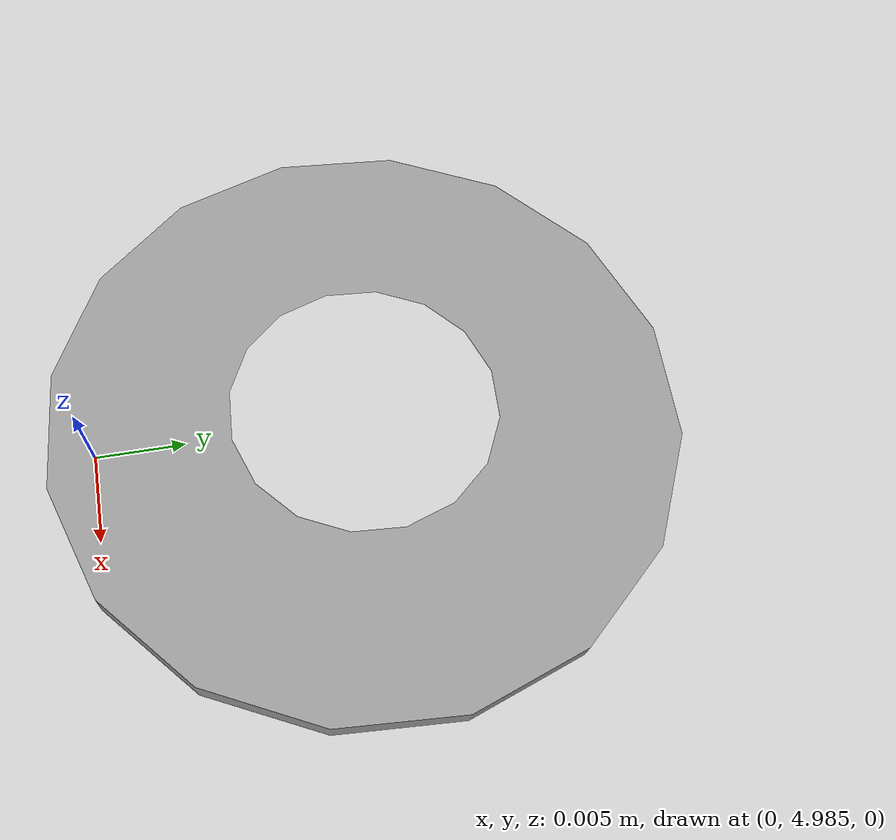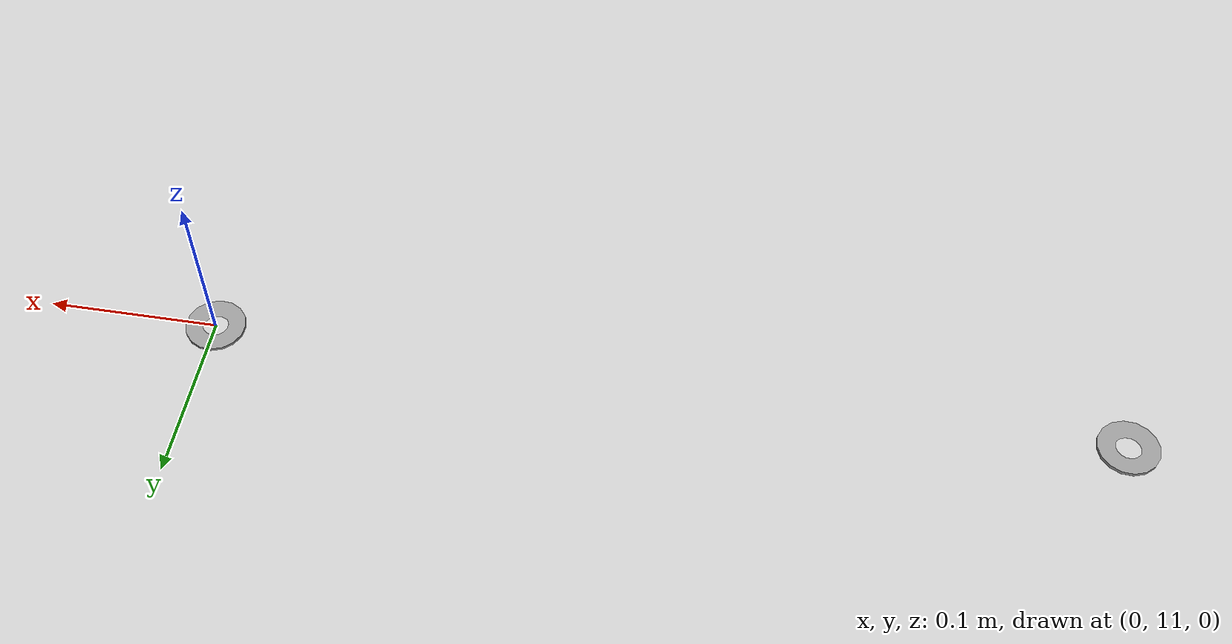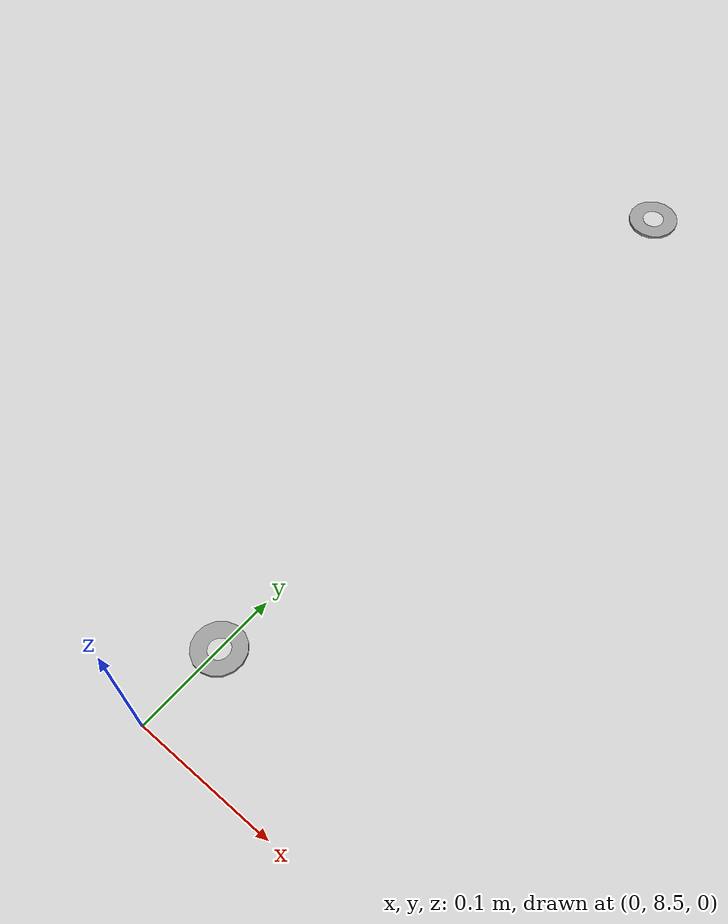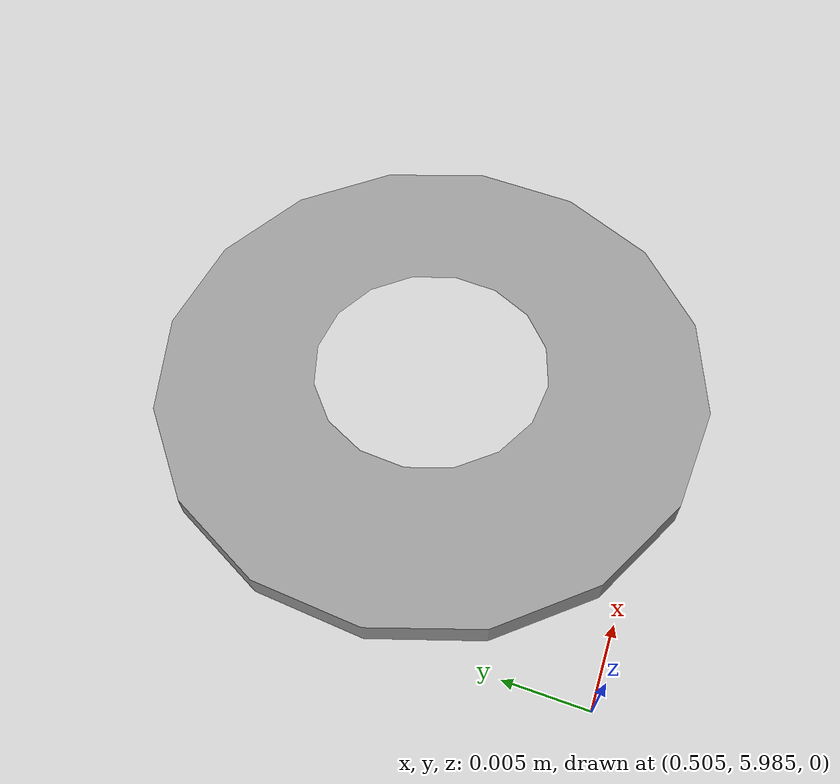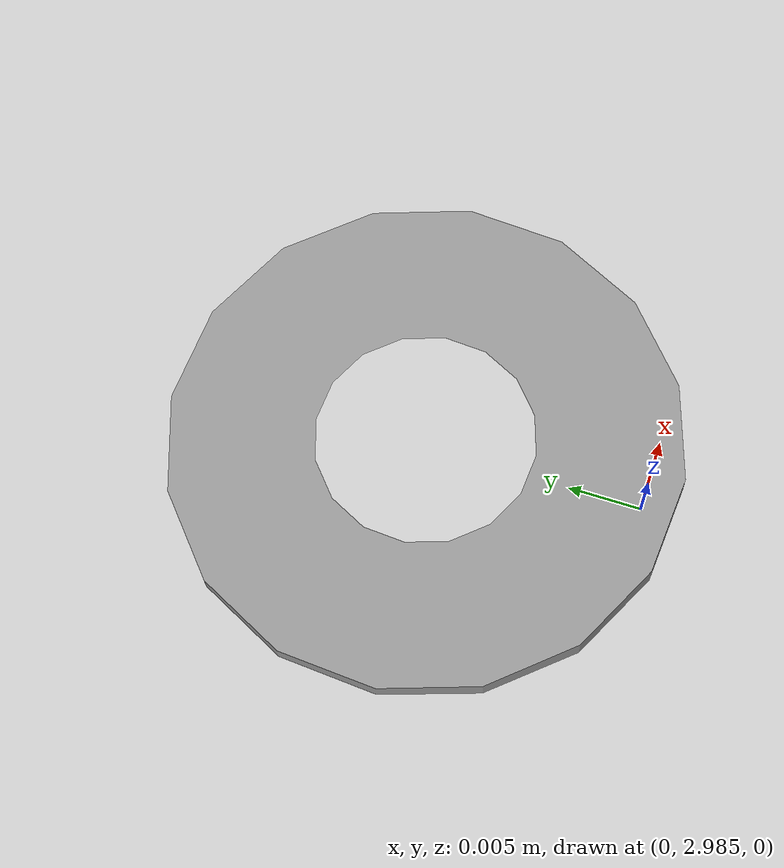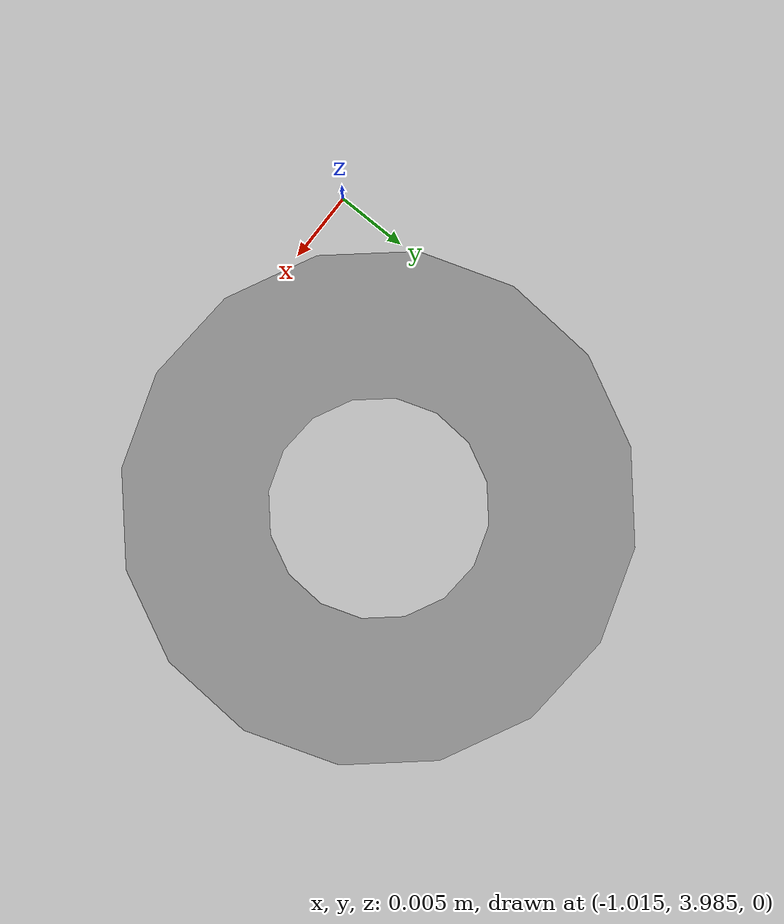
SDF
<sdf version="1.6">
 <world name="default">
  <spherical_coordinates>
   <latitude_deg>46.4143</latitude_deg>
   <longitude_deg>6.92808</longitude_deg>
   <surface_model>EARTH_WGS84</surface_model>
   <elevation>0</elevation>
   <heading_deg>0</heading_deg>
  </spherical_coordinates>
  <physics name="default_physics" default="0" type="ode">
   <real_time_update_rate>1000</real_time_update_rate>
   <max_step_size>0.001</max_step_size>
   <real_time_factor>1</real_time_factor>
   <max_contacts>20</max_contacts>
   <ode>
    <solver>
     <type>world</type>
     <min_step_size>0.0001</min_step_size>
     <iters>50</iters>
     <precon_iters>0</precon_iters>
     <sor>1.4</sor>
     <use_dynamic_moi_rescaling>1</use_dynamic_moi_rescaling>
    </solver>
    <constraints>
     <cfm>0</cfm>
     <erp>0.2</erp>
     <contact_max_correcting_vel>100</contact_max_correcting_vel>
     <contact_surface_layer>0.001</contact_surface_layer>
    </constraints>
   </ode>
  </physics>
  <atmosphere type="adiabatic">
   <temperature>298.15</temperature>
   <pressure>101325</pressure>
   <temperature_gradient>-0.0065</temperature_gradient>
  </atmosphere>
  <plugin name="fwman" filename="libsphinx_fwman.so">
   <spawn_point name="default"><pose>0 0 0.2 0 0 0</pose></spawn_point>
  </plugin>
  <model name="ground_plane">
   <static>1</static>
   <link name="link">
    <collision name="collision">
     <geometry><plane><normal>0 0 1</normal><size>100 100</size></plane></geometry>
     <surface>
      <contact><collide_bitmask>65535</collide_bitmask></contact>
      <friction><ode><mu>100</mu><mu2>50</mu2></ode></friction>
     </surface>
    </collision>
    <visual name="visual">
     <cast_shadows>0</cast_shadows>
     <geometry><plane><normal>0 0 1</normal><size>100 100</size></plane></geometry>
     <material>
      <script><uri>file://media/materials/scripts/gazebo.material</uri><name>Gazebo/Grey</name></script>
     </material>
    </visual>
   </link>
  </model>
  <model name="washer_1">
   <link name="link">
    <pose>0 0 0.001 0 -0 0</pose>
    <inertial>
     <mass>0.0122</mass>
     <inertia>
      <ixx>1.08758e-06</ixx>
      <ixy>0</ixy>
      <ixz>0</ixz>
      <iyy>1.08758e-06</iyy>
      <iyz>0</iyz>
      <izz>2.16703e-06</izz>
     </inertia>
    </inertial>
    <collision name="collision">
     <geometry><mesh><uri>model://washer/meshes/washer.dae</uri><scale>1 1 1</scale></mesh></geometry>
     <surface>
      <contact>
       <poissons_ratio>0.305</poissons_ratio>
       <elastic_modulus>2e+11</elastic_modulus>
       <ode><kp>100000</kp><kd>100</kd><max_vel>100</max_vel><min_depth>0.001</min_depth></ode>
      </contact>
      <friction>
       <torsional>
        <coefficient>1</coefficient>
        <use_patch_radius>0</use_patch_radius>
        <surface_radius>0.01</surface_radius>
       </torsional>
      </friction>
     </surface>
    </collision>
    <visual name="visual">
     <geometry><mesh><uri>model://washer/meshes/washer.dae</uri><scale>1 1 1</scale></mesh></geometry>
     <material>
      <script><uri>file://media/materials/scripts/gazebo.material</uri><name>Gazebo/Grey</name></script>
     </material>
    </visual>
   </link>
   <pose>0 1.50003 -0.000579 -0.021022 -0.002426 -0.000304</pose>
  </model>
  <model name="washer_2">
   <link name="link">
    <pose>0 0 0.001 0 -0 0</pose>
    <inertial>
     <mass>0.0122</mass>
     <inertia>
      <ixx>1.08758e-06</ixx>
      <ixy>0</ixy>
      <ixz>0</ixz>
      <iyy>1.08758e-06</iyy>
      <iyz>0</iyz>
      <izz>2.16703e-06</izz>
     </inertia>
    </inertial>
    <collision name="collision">
     <geometry><mesh><uri>model://washer/meshes/washer.dae</uri><scale>1 1 1</scale></mesh></geometry>
     <surface>
      <contact>
       <poissons_ratio>0.305</poissons_ratio>
       <elastic_modulus>2e+11</elastic_modulus>
       <ode><kp>100000</kp><kd>100</kd><max_vel>100</max_vel><min_depth>0.001</min_depth></ode>
      </contact>
      <friction>
       <torsional>
        <coefficient>1</coefficient>
        <use_patch_radius>0</use_patch_radius>
        <surface_radius>0.01</surface_radius>
       </torsional>
      </friction>
     </surface>
    </collision>
    <visual name="visual">
     <geometry><mesh><uri>model://washer/meshes/washer.dae</uri><scale>1 1 1</scale></mesh></geometry>
     <material>
      <script><uri>file://media/materials/scripts/gazebo.material</uri><name>Gazebo/Grey</name></script>
     </material>
    </visual>
   </link>
   <pose>0 3.00003 -0.000579 -0.021019 -0.002427 -0.000301</pose>
  </model>
  <model name="washer_3">
   <link name="link">
    <pose>0 0 0.001 0 -0 0</pose>
    <inertial>
     <mass>0.0122</mass>
     <inertia>
      <ixx>1.08758e-06</ixx>
      <ixy>0</ixy>
      <ixz>0</ixz>
      <iyy>1.08758e-06</iyy>
      <iyz>0</iyz>
      <izz>2.16703e-06</izz>
     </inertia>
    </inertial>
    <collision name="collision">
     <geometry><mesh><uri>model://washer/meshes/washer.dae</uri><scale>1 1 1</scale></mesh></geometry>
     <surface>
      <contact>
       <poissons_ratio>0.305</poissons_ratio>
       <elastic_modulus>2e+11</elastic_modulus>
       <ode><kp>100000</kp><kd>100</kd><max_vel>100</max_vel><min_depth>0.001</min_depth></ode>
      </contact>
      <friction>
       <torsional>
        <coefficient>1</coefficient>
        <use_patch_radius>0</use_patch_radius>
        <surface_radius>0.01</surface_radius>
       </torsional>
      </friction>
     </surface>
    </collision>
    <visual name="visual">
     <geometry><mesh><uri>model://washer/meshes/washer.dae</uri><scale>1 1 1</scale></mesh></geometry>
     <material>
      <script><uri>file://media/materials/scripts/gazebo.material</uri><name>Gazebo/Grey</name></script>
     </material>
    </visual>
   </link>
   <pose>0 5.00003 -0.000579 -0.021035 -0.002426 -0.000291</pose>
  </model>
  <model name="washer_4">
   <link name="link">
    <pose>0 0 0.001 0 -0 0</pose>
    <inertial>
     <mass>0.0122</mass>
     <inertia>
      <ixx>1.08758e-06</ixx>
      <ixy>0</ixy>
      <ixz>0</ixz>
      <iyy>1.08758e-06</iyy>
      <iyz>0</iyz>
      <izz>2.16703e-06</izz>
     </inertia>
    </inertial>
    <collision name="collision">
     <geometry><mesh><uri>model://washer/meshes/washer.dae</uri><scale>1 1 1</scale></mesh></geometry>
     <surface>
      <contact>
       <poissons_ratio>0.305</poissons_ratio>
       <elastic_modulus>2e+11</elastic_modulus>
       <ode><kp>100000</kp><kd>100</kd><max_vel>100</max_vel><min_depth>0.001</min_depth></ode>
      </contact>
      <friction>
       <torsional>
        <coefficient>1</coefficient>
        <use_patch_radius>0</use_patch_radius>
        <surface_radius>0.01</surface_radius>
       </torsional>
      </friction>
     </surface>
    </collision>
    <visual name="visual">
     <geometry><mesh><uri>model://washer/meshes/washer.dae</uri><scale>1 1 1</scale></mesh></geometry>
     <material>
      <script><uri>file://media/materials/scripts/gazebo.material</uri><name>Gazebo/Grey</name></script>
     </material>
    </visual>
   </link>
   <pose>0 7.00003 -0.000579 -0.021035 -0.002426 -0.000291</pose>
  </model>
  <model name="washer_5">
   <link name="link">
    <pose>0 0 0.001 0 -0 0</pose>
    <inertial>
     <mass>0.0122</mass>
     <inertia>
      <ixx>1.08758e-06</ixx>
      <ixy>0</ixy>
      <ixz>0</ixz>
      <iyy>1.08758e-06</iyy>
      <iyz>0</iyz>
      <izz>2.16703e-06</izz>
     </inertia>
    </inertial>
    <collision name="collision">
     <geometry><mesh><uri>model://washer/meshes/washer.dae</uri><scale>1 1 1</scale></mesh></geometry>
     <surface>
      <contact>
       <poissons_ratio>0.305</poissons_ratio>
       <elastic_modulus>2e+11</elastic_modulus>
       <ode><kp>100000</kp><kd>100</kd><max_vel>100</max_vel><min_depth>0.001</min_depth></ode>
      </contact>
      <friction>
       <torsional>
        <coefficient>1</coefficient>
        <use_patch_radius>0</use_patch_radius>
        <surface_radius>0.01</surface_radius>
       </torsional>
      </friction>
     </surface>
    </collision>
    <visual name="visual">
     <geometry><mesh><uri>model://washer/meshes/washer.dae</uri><scale>1 1 1</scale></mesh></geometry>
     <material>
      <script><uri>file://media/materials/scripts/gazebo.material</uri><name>Gazebo/Grey</name></script>
     </material>
    </visual>
   </link>
   <pose>0 9.00003 -0.000579 -0.021031 -0.002426 -0.00029</pose>
  </model>
  <model name="washer_6">
   <link name="link">
    <pose>0 0 0.001 0 -0 0</pose>
    <inertial>
     <mass>0.0122</mass>
     <inertia>
      <ixx>1.08758e-06</ixx>
      <ixy>0</ixy>
      <ixz>0</ixz>
      <iyy>1.08758e-06</iyy>
      <iyz>0</iyz>
      <izz>2.16703e-06</izz>
     </inertia>
    </inertial>
    <collision name="collision">
     <geometry><mesh><uri>model://washer/meshes/washer.dae</uri><scale>1 1 1</scale></mesh></geometry>
     <surface>
      <contact>
       <poissons_ratio>0.305</poissons_ratio>
       <elastic_modulus>2e+11</elastic_modulus>
       <ode><kp>100000</kp><kd>100</kd><max_vel>100</max_vel><min_depth>0.001</min_depth></ode>
      </contact>
      <friction>
       <torsional>
        <coefficient>1</coefficient>
        <use_patch_radius>0</use_patch_radius>
        <surface_radius>0.01</surface_radius>
       </torsional>
      </friction>
     </surface>
    </collision>
    <visual name="visual">
     <geometry><mesh><uri>model://washer/meshes/washer.dae</uri><scale>1 1 1</scale></mesh></geometry>
     <material>
      <script><uri>file://media/materials/scripts/gazebo.material</uri><name>Gazebo/Grey</name></script>
     </material>
    </visual>
   </link>
   <pose>0 11 -0.000579 -0.021031 -0.002426 -0.00029</pose>
  </model>
  <model name="washer_7">
   <link name="link">
    <pose>0 0 0.001 0 -0 0</pose>
    <inertial>
     <mass>0.0122</mass>
     <inertia>
      <ixx>1.08758e-06</ixx>
      <ixy>0</ixy>
      <ixz>0</ixz>
      <iyy>1.08758e-06</iyy>
      <iyz>0</iyz>
      <izz>2.16703e-06</izz>
     </inertia>
    </inertial>
    <collision name="collision">
     <geometry><mesh><uri>model://washer/meshes/washer.dae</uri><scale>1 1 1</scale></mesh></geometry>
     <surface>
      <contact>
       <poissons_ratio>0.305</poissons_ratio>
       <elastic_modulus>2e+11</elastic_modulus>
       <ode><kp>100000</kp><kd>100</kd><max_vel>100</max_vel><min_depth>0.001</min_depth></ode>
      </contact>
      <friction>
       <torsional>
        <coefficient>1</coefficient>
        <use_patch_radius>0</use_patch_radius>
        <surface_radius>0.01</surface_radius>
       </torsional>
      </friction>
     </surface>
    </collision>
    <visual name="visual">
     <geometry><mesh><uri>model://washer/meshes/washer.dae</uri><scale>1 1 1</scale></mesh></geometry>
     <material>
      <script><uri>file://media/materials/scripts/gazebo.material</uri><name>Gazebo/Grey</name></script>
     </material>
    </visual>
   </link>
   <pose>0 13 -0.000579 -0.021031 -0.002426 -0.00029</pose>
  </model>
  <model name="washer_8">
   <link name="link">
    <pose>0 0 0.001 0 -0 0</pose>
    <inertial>
     <mass>0.0122</mass>
     <inertia>
      <ixx>1.08758e-06</ixx>
      <ixy>0</ixy>
      <ixz>0</ixz>
      <iyy>1.08758e-06</iyy>
      <iyz>0</iyz>
      <izz>2.16703e-06</izz>
     </inertia>
    </inertial>
    <collision name="collision">
     <geometry><mesh><uri>model://washer/meshes/washer.dae</uri><scale>1 1 1</scale></mesh></geometry>
     <surface>
      <contact>
       <poissons_ratio>0.305</poissons_ratio>
       <elastic_modulus>2e+11</elastic_modulus>
       <ode><kp>100000</kp><kd>100</kd><max_vel>100</max_vel><min_depth>0.001</min_depth></ode>
      </contact>
      <friction>
       <torsional>
        <coefficient>1</coefficient>
        <use_patch_radius>0</use_patch_radius>
        <surface_radius>0.01</surface_radius>
       </torsional>
      </friction>
     </surface>
    </collision>
    <visual name="visual">
     <geometry><mesh><uri>model://washer/meshes/washer.dae</uri><scale>1 1 1</scale></mesh></geometry>
     <material>
      <script><uri>file://media/materials/scripts/gazebo.material</uri><name>Gazebo/Grey</name></script>
     </material>
    </visual>
   </link>
   <pose>0 15 -0.000579 -0.021031 -0.002426 -0.00029</pose>
  </model>
  <model name="washer_9">
   <link name="link">
    <pose>0 0 0.001 0 -0 0</pose>
    <inertial>
     <mass>0.0122</mass>
     <inertia>
      <ixx>1.08758e-06</ixx>
      <ixy>0</ixy>
      <ixz>0</ixz>
      <iyy>1.08758e-06</iyy>
      <iyz>0</iyz>
      <izz>2.16703e-06</izz>
     </inertia>
    </inertial>
    <collision name="collision">
     <geometry><mesh><uri>model://washer/meshes/washer.dae</uri><scale>1 1 1</scale></mesh></geometry>
     <surface>
      <contact>
       <poissons_ratio>0.305</poissons_ratio>
       <elastic_modulus>2e+11</elastic_modulus>
       <ode><kp>100000</kp><kd>100</kd><max_vel>100</max_vel><min_depth>0.001</min_depth></ode>
      </contact>
      <friction>
       <torsional>
        <coefficient>1</coefficient>
        <use_patch_radius>0</use_patch_radius>
        <surface_radius>0.01</surface_radius>
       </torsional>
      </friction>
     </surface>
    </collision>
    <visual name="visual">
     <geometry><mesh><uri>model://washer/meshes/washer.dae</uri><scale>1 1 1</scale></mesh></geometry>
     <material>
      <script><uri>file://media/materials/scripts/gazebo.material</uri><name>Gazebo/Grey</name></script>
     </material>
    </visual>
   </link>
   <pose>0 17 -0.000579 -0.021035 -0.002426 -0.000294</pose>
  </model>
  <model name="washer_10">
   <link name="link">
    <pose>0 0 0.001 0 -0 0</pose>
    <inertial>
     <mass>0.0122</mass>
     <inertia>
      <ixx>1.08758e-06</ixx>
      <ixy>0</ixy>
      <ixz>0</ixz>
      <iyy>1.08758e-06</iyy>
      <iyz>0</iyz>
      <izz>2.16703e-06</izz>
     </inertia>
    </inertial>
    <collision name="collision">
     <geometry><mesh><uri>model://washer/meshes/washer.dae</uri><scale>1 1 1</scale></mesh></geometry>
     <surface>
      <contact>
       <poissons_ratio>0.305</poissons_ratio>
       <elastic_modulus>2e+11</elastic_modulus>
       <ode><kp>100000</kp><kd>100</kd><max_vel>100</max_vel><min_depth>0.001</min_depth></ode>
      </contact>
      <friction>
       <torsional>
        <coefficient>1</coefficient>
        <use_patch_radius>0</use_patch_radius>
        <surface_radius>0.01</surface_radius>
       </torsional>
      </friction>
     </surface>
    </collision>
    <visual name="visual">
     <geometry><mesh><uri>model://washer/meshes/washer.dae</uri><scale>1 1 1</scale></mesh></geometry>
     <material>
      <script><uri>file://media/materials/scripts/gazebo.material</uri><name>Gazebo/Grey</name></script>
     </material>
    </visual>
   </link>
   <pose>0 19 -0.000579 -0.021035 -0.002426 -0.000294</pose>
  </model>
  <model name="washer_11">
   <link name="link">
    <pose>0 0 0.001 0 -0 0</pose>
    <inertial>
     <mass>0.0122</mass>
     <inertia>
      <ixx>1.08758e-06</ixx>
      <ixy>0</ixy>
      <ixz>0</ixz>
      <iyy>1.08758e-06</iyy>
      <iyz>0</iyz>
      <izz>2.16703e-06</izz>
     </inertia>
    </inertial>
    <collision name="collision">
     <geometry><mesh><uri>model://washer/meshes/washer.dae</uri><scale>1 1 1</scale></mesh></geometry>
     <surface>
      <contact>
       <poissons_ratio>0.305</poissons_ratio>
       <elastic_modulus>2e+11</elastic_modulus>
       <ode><kp>100000</kp><kd>100</kd><max_vel>100</max_vel><min_depth>0.001</min_depth></ode>
      </contact>
      <friction>
       <torsional>
        <coefficient>1</coefficient>
        <use_patch_radius>0</use_patch_radius>
        <surface_radius>0.01</surface_radius>
       </torsional>
      </friction>
     </surface>
    </collision>
    <visual name="visual">
     <geometry><mesh><uri>model://washer/meshes/washer.dae</uri><scale>1 1 1</scale></mesh></geometry>
     <material>
      <script><uri>file://media/materials/scripts/gazebo.material</uri><name>Gazebo/Grey</name></script>
     </material>
    </visual>
   </link>
   <pose>0 21 -0.000579 -0.021035 -0.002426 -0.000294</pose>
  </model>
  <scene><ambient>0.4 0.4 0.4 1</ambient><background>0.7 0.7 0.7 1</background><shadows>1</shadows></scene>
  <light name="sun" type="directional">
   <pose>0 0 400 0 -0 0</pose>
   <diffuse>0.8 0.8 0.8 1</diffuse>
   <specular>0.2 0.2 0.2 1</specular>
   <attenuation>
    <range>1000</range>
    <constant>0.9</constant>
    <linear>0.01</linear>
    <quadratic>0.001</quadratic>
   </attenuation>
   <direction>-0.5 0.1 -0.9</direction>
  </light>
  <gravity>0 0 -9.81</gravity>
  <magnetic_field>0 2.1e-05 -4.3e-05</magnetic_field>
  <model name="washer">
   <link name="link">
    <pose>0 0 0.001 0 -0 0</pose>
    <inertial>
     <mass>0.0122</mass>
     <inertia>
      <ixx>1.08758e-06</ixx>
      <ixy>0</ixy>
      <ixz>0</ixz>
      <iyy>1.08758e-06</iyy>
      <iyz>0</iyz>
      <izz>2.16703e-06</izz>
     </inertia>
    </inertial>
    <collision name="collision">
     <geometry><mesh><uri>model://washer/meshes/washer.dae</uri><scale>1 1 1</scale></mesh></geometry>
     <surface>
      <contact>
       <poissons_ratio>0.305</poissons_ratio>
       <elastic_modulus>2e+11</elastic_modulus>
       <ode><kp>100000</kp><kd>100</kd><max_vel>100</max_vel><min_depth>0.001</min_depth></ode>
      </contact>
      <friction>
       <torsional>
        <coefficient>1</coefficient>
        <use_patch_radius>0</use_patch_radius>
        <surface_radius>0.01</surface_radius>
       </torsional>
      </friction>
     </surface>
    </collision>
    <visual name="visual">
     <geometry><mesh><uri>model://washer/meshes/washer.dae</uri><scale>1 1 1</scale></mesh></geometry>
     <material>
      <script><uri>file://media/materials/scripts/gazebo.material</uri><name>Gazebo/Grey</name></script>
     </material>
    </visual>
   </link>
   <pose>-2 1.51851 -0.000515 -0.018702 -0.002203 -0.000311</pose>
  </model>
  <model name="washer_0">
   <link name="link">
    <pose>0 0 0.001 0 -0 0</pose>
    <inertial>
     <mass>0.0122</mass>
     <inertia>
      <ixx>1.08758e-06</ixx>
      <ixy>0</ixy>
      <ixz>0</ixz>
      <iyy>1.08758e-06</iyy>
      <iyz>0</iyz>
      <izz>2.16703e-06</izz>
     </inertia>
    </inertial>
    <collision name="collision">
     <geometry><mesh><uri>model://washer/meshes/washer.dae</uri><scale>1 1 1</scale></mesh></geometry>
     <surface>
      <contact>
       <poissons_ratio>0.305</poissons_ratio>
       <elastic_modulus>2e+11</elastic_modulus>
       <ode><kp>100000</kp><kd>100</kd><max_vel>100</max_vel><min_depth>0.001</min_depth></ode>
      </contact>
      <friction>
       <torsional>
        <coefficient>1</coefficient>
        <use_patch_radius>0</use_patch_radius>
        <surface_radius>0.01</surface_radius>
       </torsional>
      </friction>
     </surface>
    </collision>
    <visual name="visual">
     <geometry><mesh><uri>model://washer/meshes/washer.dae</uri><scale>1 1 1</scale></mesh></geometry>
     <material>
      <script><uri>file://media/materials/scripts/gazebo.material</uri><name>Gazebo/Grey</name></script>
     </material>
    </visual>
   </link>
   <pose>-1.50557 3.00003 -0.00045 -0.016387 -0.001968 -0.000304</pose>
  </model>
  <model name="washer_12">
   <link name="link">
    <pose>0 0 0.001 0 -0 0</pose>
    <inertial>
     <mass>0.0122</mass>
     <inertia>
      <ixx>1.08758e-06</ixx>
      <ixy>0</ixy>
      <ixz>0</ixz>
      <iyy>1.08758e-06</iyy>
      <iyz>0</iyz>
      <izz>2.16703e-06</izz>
     </inertia>
    </inertial>
    <collision name="collision">
     <geometry><mesh><uri>model://washer/meshes/washer.dae</uri><scale>1 1 1</scale></mesh></geometry>
     <surface>
      <contact>
       <poissons_ratio>0.305</poissons_ratio>
       <elastic_modulus>2e+11</elastic_modulus>
       <ode><kp>100000</kp><kd>100</kd><max_vel>100</max_vel><min_depth>0.001</min_depth></ode>
      </contact>
      <friction>
       <torsional>
        <coefficient>1</coefficient>
        <use_patch_radius>0</use_patch_radius>
        <surface_radius>0.01</surface_radius>
       </torsional>
      </friction>
     </surface>
    </collision>
    <visual name="visual">
     <geometry><mesh><uri>model://washer/meshes/washer.dae</uri><scale>1 1 1</scale></mesh></geometry>
     <material>
      <script><uri>file://media/materials/scripts/gazebo.material</uri><name>Gazebo/Grey</name></script>
     </material>
    </visual>
   </link>
   <pose>-1 4.00003 -0.000386 -0.01403 -0.001724 -0.000318</pose>
  </model>
  <model name="washer_13">
   <link name="link">
    <pose>0 0 0.001 0 -0 0</pose>
    <inertial>
     <mass>0.0122</mass>
     <inertia>
      <ixx>1.08758e-06</ixx>
      <ixy>0</ixy>
      <ixz>0</ixz>
      <iyy>1.08758e-06</iyy>
      <iyz>0</iyz>
      <izz>2.16703e-06</izz>
     </inertia>
    </inertial>
    <collision name="collision">
     <geometry><mesh><uri>model://washer/meshes/washer.dae</uri><scale>1 1 1</scale></mesh></geometry>
     <surface>
      <contact>
       <poissons_ratio>0.305</poissons_ratio>
       <elastic_modulus>2e+11</elastic_modulus>
       <ode><kp>100000</kp><kd>100</kd><max_vel>100</max_vel><min_depth>0.001</min_depth></ode>
      </contact>
      <friction>
       <torsional>
        <coefficient>1</coefficient>
        <use_patch_radius>0</use_patch_radius>
        <surface_radius>0.01</surface_radius>
       </torsional>
      </friction>
     </surface>
    </collision>
    <visual name="visual">
     <geometry><mesh><uri>model://washer/meshes/washer.dae</uri><scale>1 1 1</scale></mesh></geometry>
     <material>
      <script><uri>file://media/materials/scripts/gazebo.material</uri><name>Gazebo/Grey</name></script>
     </material>
    </visual>
   </link>
   <pose>0.522013 6.00003 -0.000322 -0.011666 -0.00147 -0.000329</pose>
  </model>
  <model name="washer_14">
   <link name="link">
    <pose>0 0 0.001 0 -0 0</pose>
    <inertial>
     <mass>0.0122</mass>
     <inertia>
      <ixx>1.08758e-06</ixx>
      <ixy>0</ixy>
      <ixz>0</ixz>
      <iyy>1.08758e-06</iyy>
      <iyz>0</iyz>
      <izz>2.16703e-06</izz>
     </inertia>
    </inertial>
    <collision name="collision">
     <geometry><mesh><uri>model://washer/meshes/washer.dae</uri><scale>1 1 1</scale></mesh></geometry>
     <surface>
      <contact>
       <poissons_ratio>0.305</poissons_ratio>
       <elastic_modulus>2e+11</elastic_modulus>
       <ode><kp>100000</kp><kd>100</kd><max_vel>100</max_vel><min_depth>0.001</min_depth></ode>
      </contact>
      <friction>
       <torsional>
        <coefficient>1</coefficient>
        <use_patch_radius>0</use_patch_radius>
        <surface_radius>0.01</surface_radius>
       </torsional>
      </friction>
     </surface>
    </collision>
    <visual name="visual">
     <geometry><mesh><uri>model://washer/meshes/washer.dae</uri><scale>1 1 1</scale></mesh></geometry>
     <material>
      <script><uri>file://media/materials/scripts/gazebo.material</uri><name>Gazebo/Grey</name></script>
     </material>
    </visual>
   </link>
   <pose>1 7.52313 -0.000258 -0.009301 -0.001204 -0.000342</pose>
  </model>
  <model name="washer_15">
   <link name="link">
    <pose>0 0 0.001 0 -0 0</pose>
    <inertial>
     <mass>0.0122</mass>
     <inertia>
      <ixx>1.08758e-06</ixx>
      <ixy>0</ixy>
      <ixz>0</ixz>
      <iyy>1.08758e-06</iyy>
      <iyz>0</iyz>
      <izz>2.16703e-06</izz>
     </inertia>
    </inertial>
    <collision name="collision">
     <geometry><mesh><uri>model://washer/meshes/washer.dae</uri><scale>1 1 1</scale></mesh></geometry>
     <surface>
      <contact>
       <poissons_ratio>0.305</poissons_ratio>
       <elastic_modulus>2e+11</elastic_modulus>
       <ode><kp>100000</kp><kd>100</kd><max_vel>100</max_vel><min_depth>0.001</min_depth></ode>
      </contact>
      <friction>
       <torsional>
        <coefficient>1</coefficient>
        <use_patch_radius>0</use_patch_radius>
        <surface_radius>0.01</surface_radius>
       </torsional>
      </friction>
     </surface>
    </collision>
    <visual name="visual">
     <geometry><mesh><uri>model://washer/meshes/washer.dae</uri><scale>1 1 1</scale></mesh></geometry>
     <material>
      <script><uri>file://media/materials/scripts/gazebo.material</uri><name>Gazebo/Grey</name></script>
     </material>
    </visual>
   </link>
   <pose>0 8.56081 -0.000193 -0.006914 -0.000929 -0.000336</pose>
  </model>
  <model name="washer_16">
   <link name="link">
    <pose>0 0 0.001 0 -0 0</pose>
    <inertial>
     <mass>0.0122</mass>
     <inertia>
      <ixx>1.08758e-06</ixx>
      <ixy>0</ixy>
      <ixz>0</ixz>
      <iyy>1.08758e-06</iyy>
      <iyz>0</iyz>
      <izz>2.16703e-06</izz>
     </inertia>
    </inertial>
    <collision name="collision">
     <geometry><mesh><uri>model://washer/meshes/washer.dae</uri><scale>1 1 1</scale></mesh></geometry>
     <surface>
      <contact>
       <poissons_ratio>0.305</poissons_ratio>
       <elastic_modulus>2e+11</elastic_modulus>
       <ode><kp>100000</kp><kd>100</kd><max_vel>100</max_vel><min_depth>0.001</min_depth></ode>
      </contact>
      <friction>
       <torsional>
        <coefficient>1</coefficient>
        <use_patch_radius>0</use_patch_radius>
        <surface_radius>0.01</surface_radius>
       </torsional>
      </friction>
     </surface>
    </collision>
    <visual name="visual">
     <geometry><mesh><uri>model://washer/meshes/washer.dae</uri><scale>1 1 1</scale></mesh></geometry>
     <material>
      <script><uri>file://media/materials/scripts/gazebo.material</uri><name>Gazebo/Grey</name></script>
     </material>
    </visual>
   </link>
   <pose>-1 9.53335 -0.000129 -0.004559 -0.000633 -0.000297</pose>
  </model>
  <model name="washer_17">
   <link name="link">
    <pose>0 0 0.001 0 -0 0</pose>
    <inertial>
     <mass>0.0122</mass>
     <inertia>
      <ixx>1.08758e-06</ixx>
      <ixy>0</ixy>
      <ixz>0</ixz>
      <iyy>1.08758e-06</iyy>
      <iyz>0</iyz>
      <izz>2.16703e-06</izz>
     </inertia>
    </inertial>
    <collision name="collision">
     <geometry><mesh><uri>model://washer/meshes/washer.dae</uri><scale>1 1 1</scale></mesh></geometry>
     <surface>
      <contact>
       <poissons_ratio>0.305</poissons_ratio>
       <elastic_modulus>2e+11</elastic_modulus>
       <ode><kp>100000</kp><kd>100</kd><max_vel>100</max_vel><min_depth>0.001</min_depth></ode>
      </contact>
      <friction>
       <torsional>
        <coefficient>1</coefficient>
        <use_patch_radius>0</use_patch_radius>
        <surface_radius>0.01</surface_radius>
       </torsional>
      </friction>
     </surface>
    </collision>
    <visual name="visual">
     <geometry><mesh><uri>model://washer/meshes/washer.dae</uri><scale>1 1 1</scale></mesh></geometry>
     <material>
      <script><uri>file://media/materials/scripts/gazebo.material</uri><name>Gazebo/Grey</name></script>
     </material>
    </visual>
   </link>
   <pose>-0.521316 11 -6.5e-05 -0.00228 -0.000314 -0.000141</pose>
  </model>
 </world>
</sdf>
